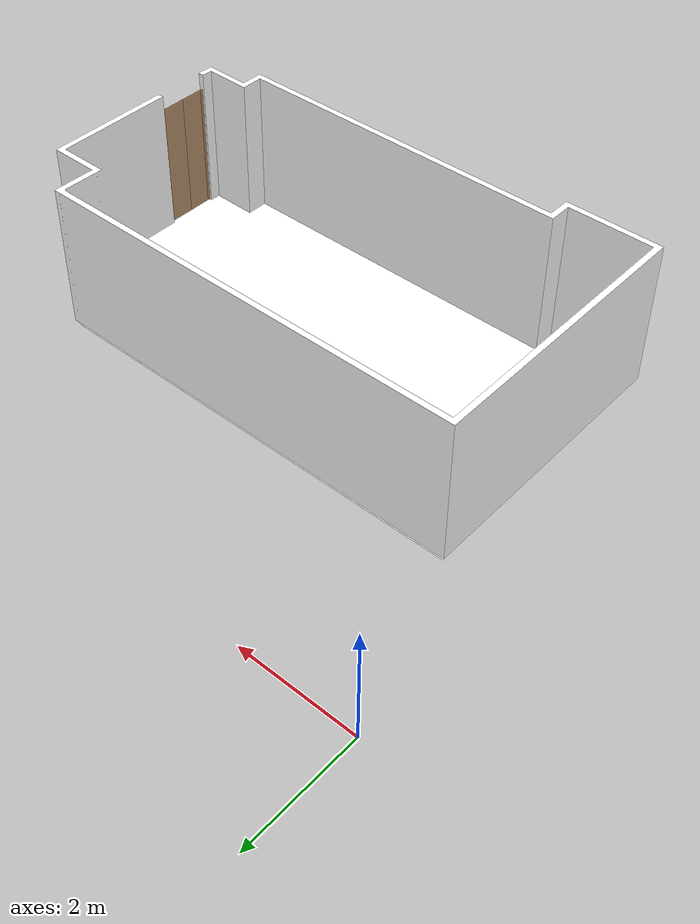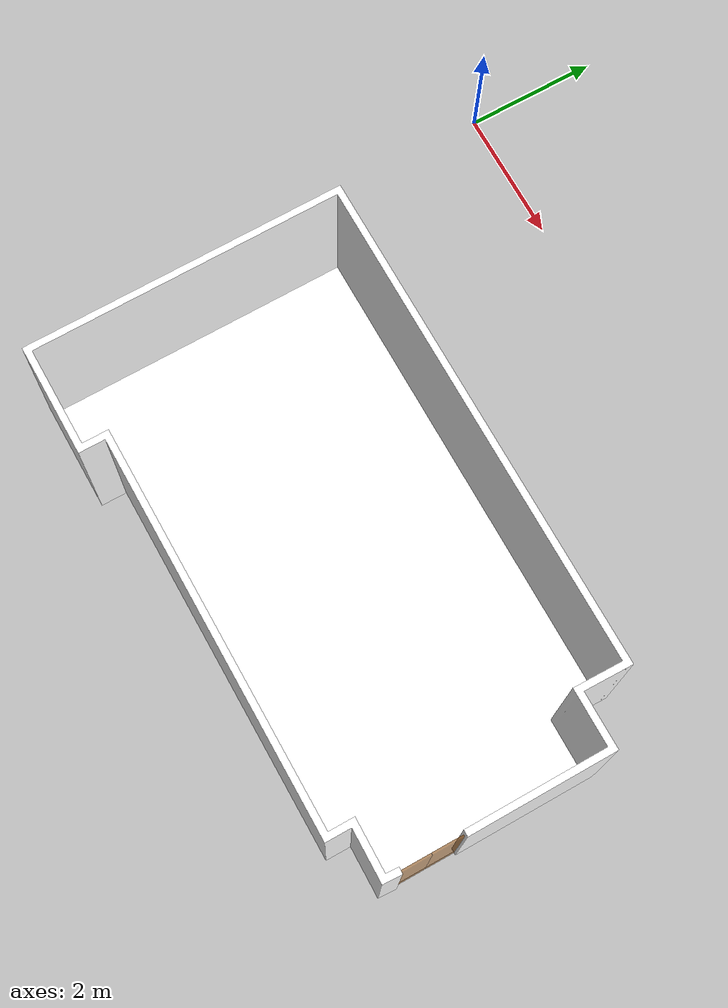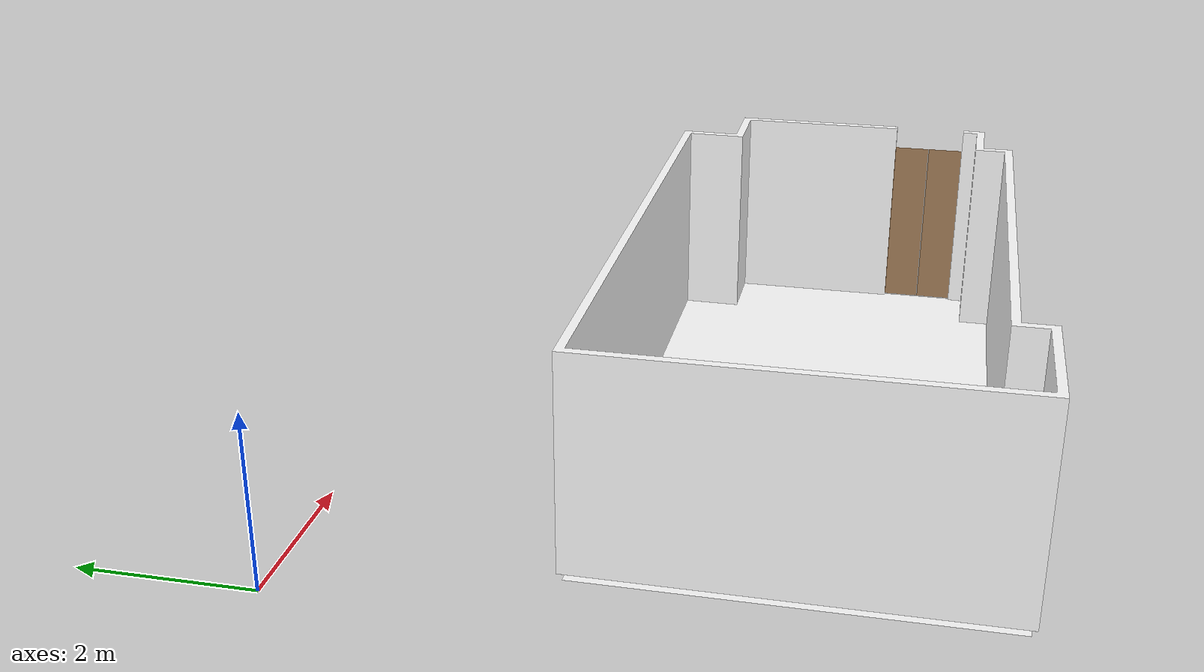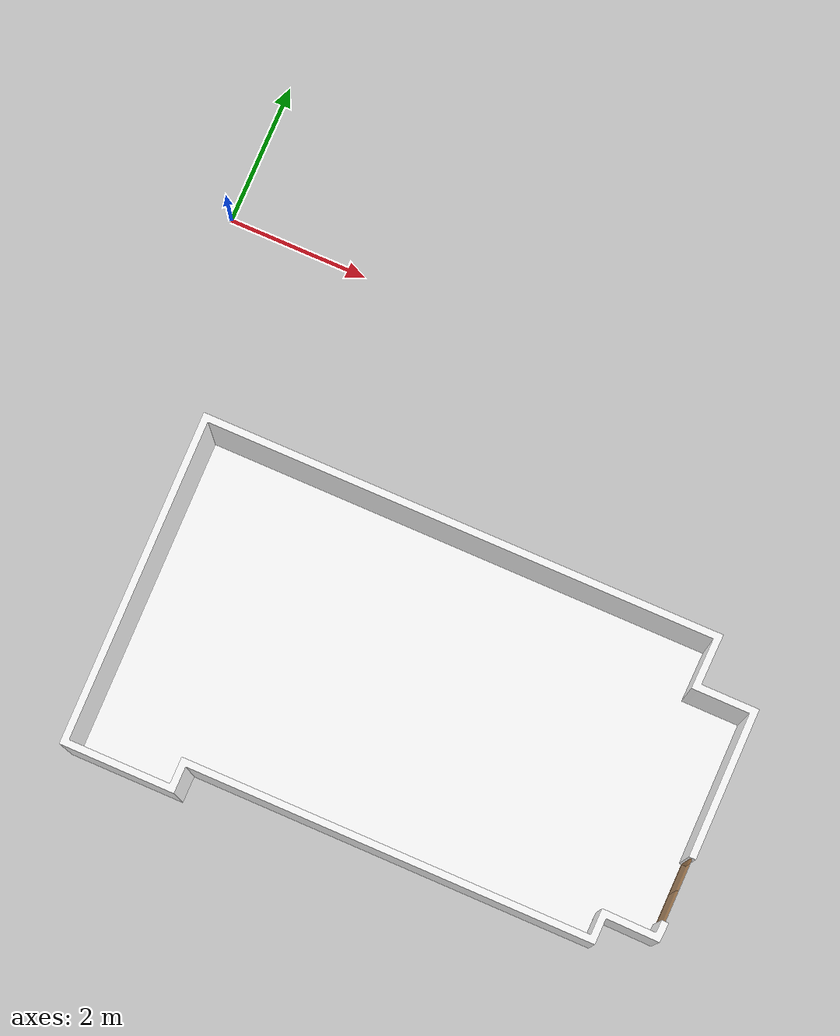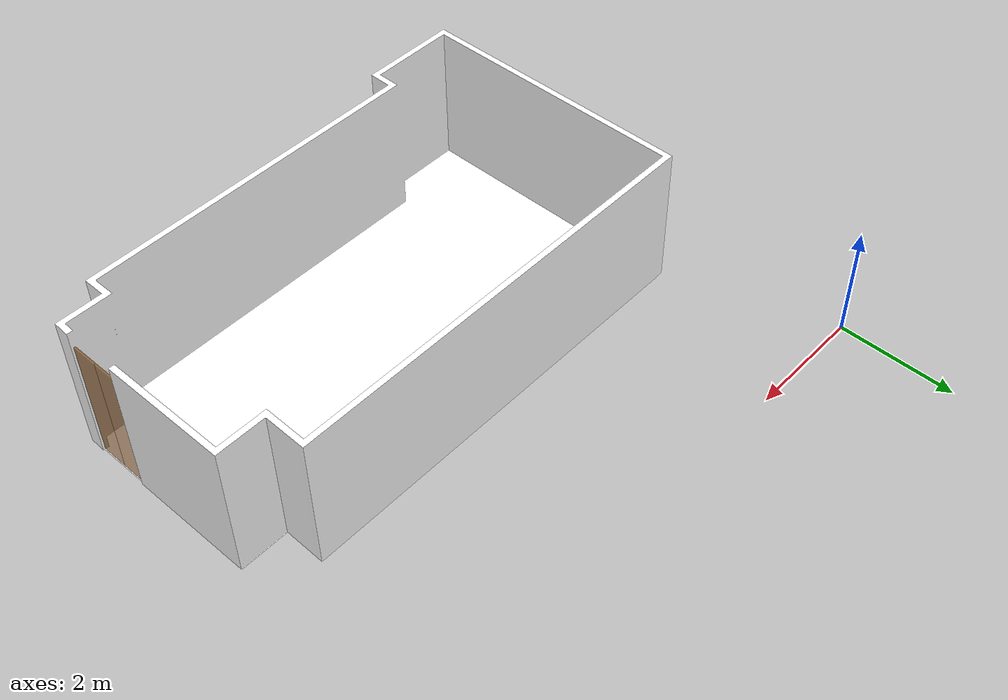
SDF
<?xml version='1.0' encoding='utf-8'?>
<sdf version="1.9">
  <world name="empty_room_world">
    <gravity>0 0 -9.8</gravity>
    <physics name="10ms" type="ode">
      <max_step_size>0.01</max_step_size>
      <real_time_factor>1.0</real_time_factor>
      <real_time_update_rate>100</real_time_update_rate>
    </physics>
    <plugin filename="libdoor.so" name="door">
    </plugin>
    <plugin filename="liblift.so" name="lift">
    </plugin>
    <gui fullscreen="0">
      <window>
        <width>1000</width>
        <height>845</height>
        <style material_theme="Light" material_primary="DeepOrange" material_accent="LightBlue" toolbar_color_light="#f3f3f3" toolbar_text_color_light="#111111" toolbar_color_dark="#414141" toolbar_text_color_dark="#f3f3f3" plugin_toolbar_color_light="#bbdefb" plugin_toolbar_text_color_light="#111111" plugin_toolbar_color_dark="#607d8b" plugin_toolbar_text_color_dark="#eeeeee" />
        <menus>
          <drawer default="false">
          </drawer>
        </menus>
      </window>
      <plugin filename="MinimalScene" name="3D View">
        <gz-gui>
          <title>3D View</title>
          <property type="bool" key="showTitleBar">false</property>
          <property type="string" key="state">docked</property>
        </gz-gui>
        <engine>ogre2</engine>
        <scene>scene</scene>
        <ambient_light>0.4 0.4 0.4</ambient_light>
        <background_color>0.8 0.8 0.8</background_color>
        <camera_pose>5.09739433045888 -25.22327334533947 10 0 0.6 1.57</camera_pose>
      </plugin>
      <plugin filename="EntityContextMenuPlugin" name="Entity context menu">
        <gz-gui>
          <property key="state" type="string">floating</property>
          <property key="width" type="double">5</property>
          <property key="height" type="double">5</property>
          <property key="showTitleBar" type="bool">false</property>
        </gz-gui>
      </plugin>
      <plugin filename="GzSceneManager" name="Scene Manager">
        <gz-gui>
          <property key="resizable" type="bool">false</property>
          <property key="width" type="double">5</property>
          <property key="height" type="double">5</property>
          <property key="state" type="string">floating</property>
          <property key="showTitleBar" type="bool">false</property>
        </gz-gui>
      </plugin>
      <plugin filename="InteractiveViewControl" name="Interactive view control">
        <gz-gui>
          <property key="resizable" type="bool">false</property>
          <property key="width" type="double">5</property>
          <property key="height" type="double">5</property>
          <property key="state" type="string">floating</property>
          <property key="showTitleBar" type="bool">false</property>
        </gz-gui>
      </plugin>
      <plugin filename="CameraTracking" name="Camera Tracking">
        <gz-gui>
          <property key="resizable" type="bool">false</property>
          <property key="width" type="double">5</property>
          <property key="height" type="double">5</property>
          <property key="state" type="string">floating</property>
          <property key="showTitleBar" type="bool">false</property>
        </gz-gui>
      </plugin>
      <plugin filename="MarkerManager" name="Marker manager">
        <gz-gui>
          <property key="resizable" type="bool">false</property>
          <property key="width" type="double">5</property>
          <property key="height" type="double">5</property>
          <property key="state" type="string">floating</property>
          <property key="showTitleBar" type="bool">false</property>
        </gz-gui>
      </plugin>
      <plugin filename="SelectEntities" name="Select Entities">
        <gz-gui>
          <property key="resizable" type="bool">false</property>
          <property key="width" type="double">5</property>
          <property key="height" type="double">5</property>
          <property key="state" type="string">floating</property>
          <property key="showTitleBar" type="bool">false</property>
        </gz-gui>
      </plugin>
      <plugin filename="Spawn" name="Spawn Entities">
        <gz-gui>
          <property key="resizable" type="bool">false</property>
          <property key="width" type="double">5</property>
          <property key="height" type="double">5</property>
          <property key="state" type="string">floating</property>
          <property key="showTitleBar" type="bool">false</property>
        </gz-gui>
      </plugin>
      <plugin filename="VisualizationCapabilities" name="Visualization Capabilities">
        <gz-gui>
          <property key="resizable" type="bool">false</property>
          <property key="width" type="double">5</property>
          <property key="height" type="double">5</property>
          <property key="state" type="string">floating</property>
          <property key="showTitleBar" type="bool">false</property>
        </gz-gui>
      </plugin>
      <plugin filename="WorldControl" name="World control">
        <gz-gui>
          <title>World control</title>
          <property type="bool" key="showTitleBar">false</property>
          <property type="bool" key="resizable">false</property>
          <property type="double" key="height">72</property>
          <property type="double" key="z">1</property>
          <property type="string" key="state">floating</property>
          <anchors target="3D View">
            <line own="left" target="left" />
            <line own="bottom" target="bottom" />
          </anchors>
        </gz-gui>
        <play_pause>true</play_pause>
        <step>true</step>
        <start_paused>true</start_paused>
        <use_event>true</use_event>
      </plugin>
      <plugin filename="WorldStats" name="World stats">
        <gz-gui>
          <title>World stats</title>
          <property type="bool" key="showTitleBar">false</property>
          <property type="bool" key="resizable">false</property>
          <property type="double" key="height">110</property>
          <property type="double" key="width">290</property>
          <property type="double" key="z">1</property>
          <property type="string" key="state">floating</property>
          <anchors target="3D View">
            <line own="right" target="right" />
            <line own="bottom" target="bottom" />
          </anchors>
        </gz-gui>
        <sim_time>true</sim_time>
        <real_time>true</real_time>
        <real_time_factor>true</real_time_factor>
        <iterations>true</iterations>
      </plugin>
      <plugin filename="Shapes" name="Shapes">
        <gz-gui>
          <property key="resizable" type="bool">false</property>
          <property key="x" type="double">0</property>
          <property key="y" type="double">0</property>
          <property key="width" type="double">250</property>
          <property key="height" type="double">50</property>
          <property key="state" type="string">floating</property>
          <property key="showTitleBar" type="bool">false</property>
          <property key="cardBackground" type="string">#666666</property>
        </gz-gui>
      </plugin>
      <plugin filename="Lights" name="Lights">
        <gz-gui>
          <property key="resizable" type="bool">false</property>
          <property key="x" type="double">250</property>
          <property key="y" type="double">0</property>
          <property key="width" type="double">150</property>
          <property key="height" type="double">50</property>
          <property key="state" type="string">floating</property>
          <property key="showTitleBar" type="bool">false</property>
          <property key="cardBackground" type="string">#666666</property>
        </gz-gui>
      </plugin>
      <plugin filename="TransformControl" name="Transform control">
        <gz-gui>
          <property key="resizable" type="bool">false</property>
          <property key="x" type="double">0</property>
          <property key="y" type="double">50</property>
          <property key="width" type="double">250</property>
          <property key="height" type="double">50</property>
          <property key="state" type="string">floating</property>
          <property key="showTitleBar" type="bool">false</property>
          <property key="cardBackground" type="string">#777777</property>
        </gz-gui>
      </plugin>
      <plugin filename="Screenshot" name="Screenshot">
        <gz-gui>
          <property key="resizable" type="bool">false</property>
          <property key="x" type="double">250</property>
          <property key="y" type="double">50</property>
          <property key="width" type="double">50</property>
          <property key="height" type="double">50</property>
          <property key="state" type="string">floating</property>
          <property key="showTitleBar" type="bool">false</property>
          <property key="cardBackground" type="string">#777777</property>
        </gz-gui>
      </plugin>
      <plugin filename="CopyPaste" name="CopyPaste">
        <gz-gui>
          <property key="resizable" type="bool">false</property>
          <property key="x" type="double">300</property>
          <property key="y" type="double">50</property>
          <property key="width" type="double">100</property>
          <property key="height" type="double">50</property>
          <property key="state" type="string">floating</property>
          <property key="showTitleBar" type="bool">false</property>
          <property key="cardBackground" type="string">#777777</property>
        </gz-gui>
      </plugin>
      <plugin filename="ComponentInspector" name="Component inspector">
        <gz-gui>
          <property type="bool" key="showTitleBar">false</property>
          <property type="string" key="state">docked</property>
        </gz-gui>
      </plugin>
      <plugin filename="EntityTree" name="Entity tree">
        <gz-gui>
          <property type="bool" key="showTitleBar">false</property>
          <property type="string" key="state">docked</property>
        </gz-gui>
      </plugin>
      <plugin filename="toggle_charging" name="toggle_charging" />
      <plugin name="toggle_floors" filename="toggle_floors">
        <floor name="ground" model_name="empty_room_ground">
          <model name="D1" />
        </floor>
      </plugin>
      <plugin filename="VisualizeLidar" name="Visualize Lidar">

      </plugin>
    </gui>

    <light type="directional" name="sun">
      <cast_shadows>true</cast_shadows>
      <pose>0 0 10 0 0 0</pose>
      <diffuse>1 1 1 1</diffuse>
      <specular>0.2 0.2 0.2 1</specular>
      <attenuation>
        <range>1000</range>
        <constant>0.09</constant>
        <linear>0.001</linear>
        <quadratic>0.001</quadratic>
      </attenuation>
      <direction>-0.5 0.1 -0.9</direction>
    </light>
    <model name="D1">
      <pose>9.203549068442918 -6.1422935740533 0.0 0 0 1.5707963267948966</pose>
      <link name="right">
        <pose>0.2510347879470325 0 1.11 0 0 0</pose>
        <visual name="right_visual">
          <geometry>
            <box>
              <size>0.49206957589406497 0.03 2.2</size>
            </box>
          </geometry>
          <material>
            <ambient>0.5 0.25 0 0.6</ambient>
            <diffuse>0.5 0.25 0 0.6</diffuse>
            <pbr>
              <metal>
                <metalness>0.0</metalness>
              </metal>
            </pbr>
          </material>
        </visual>
        <collision name="right_collision">
          <geometry>
            <box>
              <size>0.49206957589406497 0.03 2.2</size>
            </box>
          </geometry>
          <surface>
            <contact>
              <collide_bitmask>0x02</collide_bitmask>
            </contact>
          </surface>
        </collision>
        <inertial>
          <mass>50.0</mass>
          <inertia>
            <ixx>20.17041666666667</ixx>
            <iyy>21.175551948002358</iyy>
            <izz>1.0126352813356876</izz>
          </inertia>
        </inertial>
      </link>
      <joint name="right_joint" type="prismatic">
        <parent>world</parent>
        <child>right</child>
        <axis>
          <xyz>1 0 0</xyz>
          <limit>
            <lower>0.0</lower>
            <upper>0.502069575894065</upper>
            <effort>500.0</effort>
          </limit>
        </axis>
      </joint>
      <link name="left">
        <pose>-0.2510347879470325 0 1.11 0 0 0</pose>
        <visual name="left_visual">
          <geometry>
            <box>
              <size>0.49206957589406497 0.03 2.2</size>
            </box>
          </geometry>
          <material>
            <ambient>0.5 0.25 0 0.6</ambient>
            <diffuse>0.5 0.25 0 0.6</diffuse>
            <pbr>
              <metal>
                <metalness>0.0</metalness>
              </metal>
            </pbr>
          </material>
        </visual>
        <collision name="left_collision">
          <geometry>
            <box>
              <size>0.49206957589406497 0.03 2.2</size>
            </box>
          </geometry>
          <surface>
            <contact>
              <collide_bitmask>0x02</collide_bitmask>
            </contact>
          </surface>
        </collision>
        <inertial>
          <mass>50.0</mass>
          <inertia>
            <ixx>20.17041666666667</ixx>
            <iyy>21.175551948002358</iyy>
            <izz>1.0126352813356876</izz>
          </inertia>
        </inertial>
      </link>
      <joint name="left_joint" type="prismatic">
        <parent>world</parent>
        <child>left</child>
        <axis>
          <xyz>1 0 0</xyz>
          <limit>
            <lower>-0.502069575894065</lower>
            <upper>0.0</upper>
            <effort>500.0</effort>
          </limit>
        </axis>
      </joint>
      <plugin name="register_component" filename="libregister_component.so">
        <component name="Door">
          <v_max_door>0.2</v_max_door>
          <a_max_door>0.2</a_max_door>
          <a_nom_door>0.08</a_nom_door>
          <dx_min_door>0.001</dx_min_door>
          <f_max_door>100.0</f_max_door>
          <ros_interface>true</ros_interface>
          <door name="D1" type="DoubleSlidingDoor" left_joint_name="left_joint" right_joint_name="right_joint" />
        </component>
      </plugin>
    </model>
    <include>
      <name>empty_room_ground</name>
      <uri>/workspaces/install/share/minipock_gz/worlds/models/empty_room_ground/model.sdf</uri>
      <pose>0 0 0.0 0 0 0</pose>
    </include>
    <rmf_charger_waypoints name="charger_waypoints">
      <rmf_vertex name="up_right" x="7.929064222877705" y="-3.815474419287308" level="ground" />
      <rmf_vertex name="bottom_left" x="2.053461700390844" y="-6.2162598987180635" level="ground" />
    </rmf_charger_waypoints>
    <plugin
        filename="gz-sim-physics-system"
        name="gz::sim::systems::Physics">
    </plugin>
    <plugin
        filename="gz-sim-user-commands-system"
        name="gz::sim::systems::UserCommands">
    </plugin>
    <plugin
        filename="gz-sim-sensors-system"
        name="gz::sim::systems::Sensors">
      <render_engine>ogre2</render_engine>
      <disable_on_drained_battery>true</disable_on_drained_battery>
    </plugin>
    <plugin
        filename="gz-sim-forcetorque-system"
        name="gz::sim::systems::ForceTorque">
    </plugin>
    <plugin
        filename="gz-sim-particle-emitter-system"
        name="gz::sim::systems::ParticleEmitter">
    </plugin>
    <plugin
        filename="gz-sim-scene-broadcaster-system"
        name="gz::sim::systems::SceneBroadcaster">
    </plugin>
    <plugin
        filename="gz-sim-contact-system"
        name="gz::sim::systems::Contact">
    </plugin>
  </world>
</sdf>

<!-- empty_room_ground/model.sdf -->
<sdf version="1.7">
  <model name="empty_room_ground">
    <static>true</static>
    <link name="floor_1">
      <visual name="visual">
        <geometry>
          <mesh>
            <uri>package://minipock_gz/worlds/models/empty_room_ground/meshes/floor_1.obj</uri>
          </mesh>
        </geometry>
        <material>
          <diffuse>1.0 1.0 1.0</diffuse>
          <specular>0.1 0.1 0.1</specular>
          <pbr>
            <metal>
              <metalness>0.0</metalness>
              <albedo_map>package://minipock_gz/worlds/models/empty_room_ground/meshes/blue_linoleum.png</albedo_map>
            </metal>
          </pbr>
          <script>
            <uri>package://minipock_gz/worlds/models/empty_room_ground/meshes/</uri>
            <name>floor_1_Diffuse</name>
          </script>
        </material>
      </visual>
      <collision name="collision">
        <geometry>
          <mesh>
            <uri>package://minipock_gz/worlds/models/empty_room_ground/meshes/floor_1.obj</uri>
          </mesh>
        </geometry>
        <surface>
          <contact>
            <collide_bitmask>0x01</collide_bitmask>
          </contact>
        </surface>
      </collision>
    </link>
    <link name="wall_1">
      <visual name="wall_1">
        <geometry>
          <mesh>
            <uri>package://minipock_gz/worlds/models/empty_room_ground/meshes/wall_1.obj</uri>
          </mesh>
        </geometry>
        <transparency>0.0</transparency>
        <material>
          <diffuse>1.0 1.0 1.0</diffuse>
          <specular>0.1 0.1 0.1</specular>
          <pbr>
            <metal>
              <metalness>0.0</metalness>
              <albedo_map>package://minipock_gz/worlds/models/empty_room_ground/meshes/default.png</albedo_map>
            </metal>
          </pbr>
          <script>
            <uri>package://minipock_gz/worlds/models/empty_room_ground/meshes/</uri>
            <name>wall_1_Diffuse</name>
          </script>
        </material>
      </visual>
      <collision name="collision">
        <geometry>
          <mesh>
            <uri>package://minipock_gz/worlds/models/empty_room_ground/meshes/wall_1.obj</uri>
          </mesh>
        </geometry>
        <surface>
          <contact>
            <collide_bitmask>0x01</collide_bitmask>
          </contact>
        </surface>
      </collision>
      <pose>0.9486207365517678 -7.624443153884247 0 0 0 0</pose>
    </link>
  </model>
</sdf>
